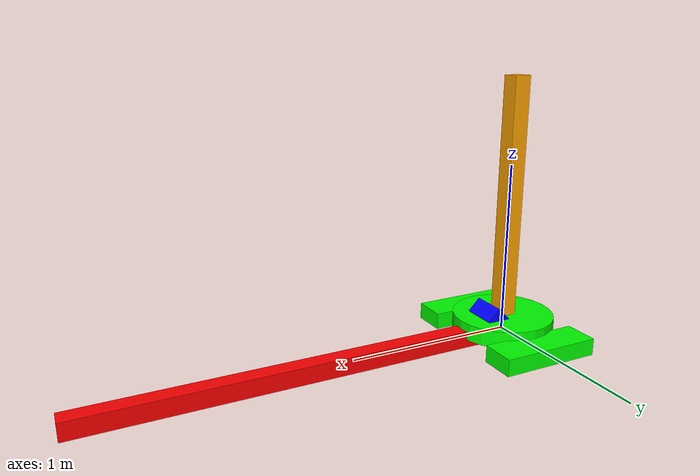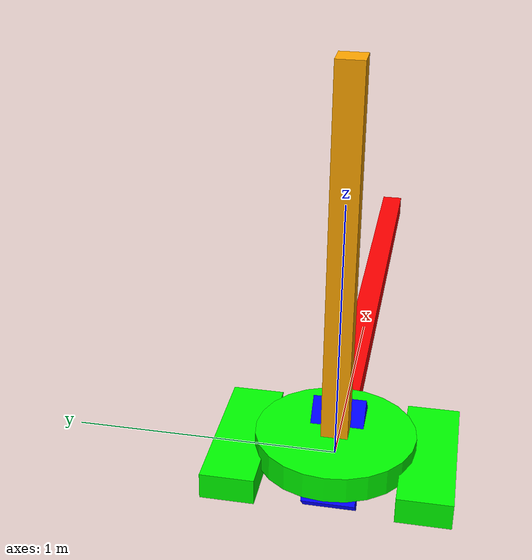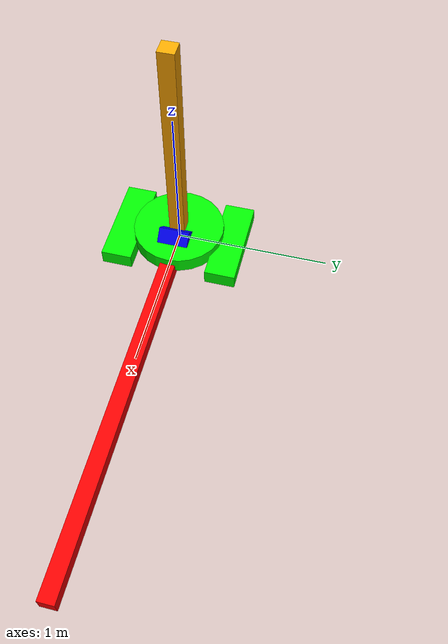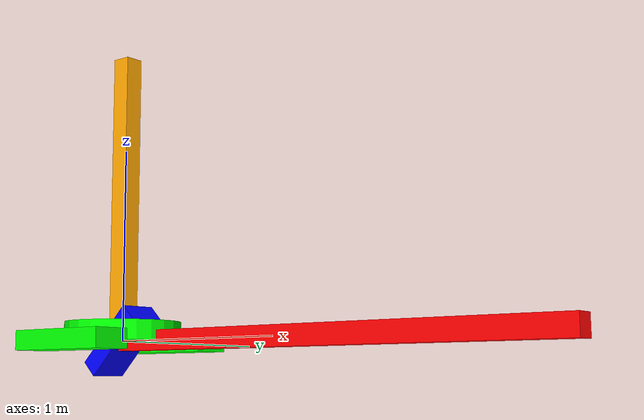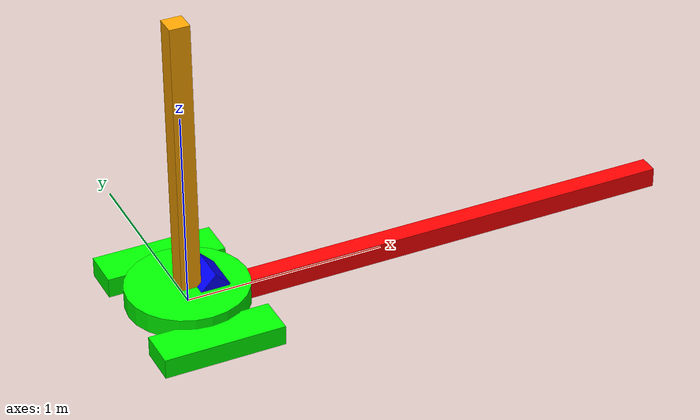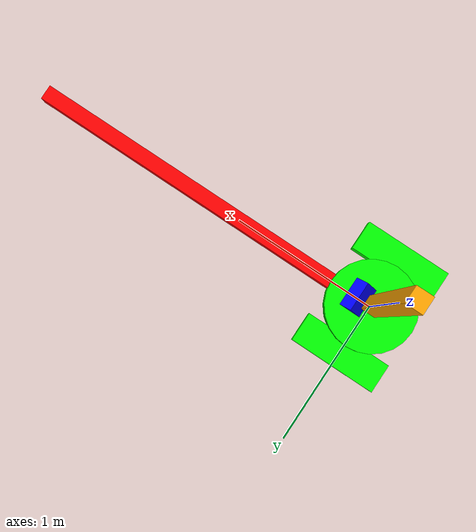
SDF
<?xml version="1.0" ?>
<sdf version="1.6">
  <model name="excavator_robot">
    <static>false</static>

    <!-- Base of the Excavator -->
    <link name="base_link">
      <pose>0 0 0.05 0 0 0</pose>
      <inertial>
        <mass>10.0</mass>
        <inertia>
          <ixx>0.1</ixx>
          <iyy>0.1</iyy>
          <izz>0.1</izz>
        </inertia>
      </inertial>
      <visual name="visual">
        <pose>0 0 0 0 0 0</pose>
        <geometry>
          <cylinder>
            <radius>0.3</radius>
            <length>0.1</length>
          </cylinder>
        </geometry>
        <material>
          <ambient>0 1 0 1</ambient>
          <diffuse>0 1 0 1</diffuse>
        </material>
      </visual>
      <collision name="collision">
        <pose>0 0 0 0 0 0</pose>
        <geometry>
          <cylinder>
            <radius>0.3</radius>
            <length>0.1</length>
          </cylinder>
        </geometry>
      </collision>
    </link>

    <!-- Left Track -->
    <link name="left_track">
      <pose>0 -0.35 0 0 0 0</pose>
      <inertial>
        <mass>2.0</mass>
        <inertia>
          <ixx>0.02</ixx>
          <iyy>0.02</iyy>
          <izz>0.02</izz>
        </inertia>
      </inertial>
      <visual name="visual">
        <pose>0 0 0 0 0 0</pose>
        <geometry>
          <box>
            <size>0.6 0.2 0.1</size>
          </box>
        </geometry>
        <material>
          <ambient>0 1 0 1</ambient>
          <diffuse>0 1 0 1</diffuse>
        </material>
      </visual>
      <collision name="collision">
        <pose>0 0 0 0 0 0</pose>
        <geometry>
          <box>
            <size>0.6 0.2 0.1</size>
          </box>
        </geometry>
      </collision>
    </link>

    <!-- Right Track -->
    <link name="right_track">
      <pose>0 0.35 0 0 0 0</pose>
      <inertial>
        <mass>2.0</mass>
        <inertia>
          <ixx>0.02</ixx>
          <iyy>0.02</iyy>
          <izz>0.02</izz>
        </inertia>
      </inertial>
      <visual name="visual">
        <pose>0 0 0 0 0 0</pose>
        <geometry>
          <box>
            <size>0.6 0.2 0.1</size>
          </box>
        </geometry>
        <material>
          <ambient>0 1 0 1</ambient>
          <diffuse>0 1 0 1</diffuse>
        </material>
      </visual>
      <collision name="collision">
        <pose>0 0 0 0 0 0</pose>
        <geometry>
          <box>
            <size>0.6 0.2 0.1</size>
          </box>
        </geometry>
      </collision>
    </link>

    <!-- Boom -->
    <link name="boom">
      <pose>0 0 0 0 0 0</pose>
      <inertial>
        <mass>3.0</mass>
        <pose>1.25 0 0 0 0 0</pose>
        <inertia>
          <ixx>0.05</ixx>
          <iyy>0.05</iyy>
          <izz>0.05</izz>
        </inertia>
      </inertial>
      <visual name="visual">
        <pose>1.25 0 0 0 0 0</pose>
        <geometry>
          <box>
            <size>2.5 0.1 0.1</size>
          </box>
        </geometry>
        <material>
          <ambient>1 0 0 1</ambient>
          <diffuse>1 0 0 1</diffuse>
        </material>
      </visual>
      <collision name="collision">
        <pose>1.25 0 0 0 0 0</pose>
        <geometry>
          <box>
            <size>2.5 0.1 0.1</size>
          </box>
        </geometry>
      </collision>
    </link>

    <!-- Stick -->
    <link name="stick">
      <pose>0 0 0 0 0 0</pose>
      <inertial>
        <mass>2.0</mass>
        <pose>0 0 0.75 0 0 0</pose>
        <inertia>
          <ixx>0.03</ixx>
          <iyy>0.03</iyy>
          <izz>0.03</izz>
        </inertia>
      </inertial>
      <visual name="visual">
        <pose>0 0 0.75 0 0 0</pose>
        <geometry>
          <box>
            <size>0.1 0.1 1.5</size>
          </box>
        </geometry>
        <material>
          <ambient>1 0.65 0 1</ambient>
          <diffuse>1 0.65 0 1</diffuse>
        </material>
      </visual>
      <collision name="collision">
        <pose>0 0 0.75 0 0 0</pose>
        <geometry>
          <box>
            <size>0.1 0.1 1.5</size>
          </box>
        </geometry>
      </collision>
    </link>

    <!-- Bucket -->
    <link name="bucket">
      <pose>0 0 0 0 0 0</pose>
      <inertial>
        <mass>1.0</mass>
        <pose>0 0 0 0 0 0</pose>
        <inertia>
          <ixx>0.005</ixx>
          <iyy>0.005</iyy>
          <izz>0.005</izz>
        </inertia>
      </inertial>
      <visual name="visual">
        <pose>0 0 0 0 -0.7854 0</pose> <!-- 45-degree tilt for scoop shape -->
        <geometry>
          <box>
            <size>0.4 0.2 0.1</size>
          </box>
        </geometry>
        <material>
          <ambient>0 0 1 1</ambient>
          <diffuse>0 0 1 1</diffuse>
        </material>
      </visual>
      <collision name="collision">
        <pose>0 0 0 0 -0.7854 0</pose>
        <geometry>
          <box>
            <size>0.4 0.2 0.1</size>
          </box>
        </geometry>
      </collision>
    </link>

    <!-- Joint: Base to Left Track (Fixed) -->
    <joint name="joint_base_to_left_track" type="fixed">
      <parent>base_link</parent>
      <child>left_track</child>
      <pose>0 -0.35 -0.05 0 0 0</pose>
    </joint>

    <!-- Joint: Base to Right Track (Fixed) -->
    <joint name="joint_base_to_right_track" type="fixed">
      <parent>base_link</parent>
      <child>right_track</child>
      <pose>0 0.35 -0.05 0 0 0</pose>
    </joint>

    <!-- Joint: Base to Boom -->
    <joint name="joint_base_to_boom" type="revolute">
      <parent>base_link</parent>
      <child>boom</child>
      <pose>0 0 0.1 0 0 0</pose>
      <axis>
        <xyz>0 1 0</xyz>
        <limit>
          <lower>-1.57</lower> <!-- -90 degrees -->
          <upper>1.57</upper>  <!-- +90 degrees -->
          <effort>20</effort>
          <velocity>1.0</velocity>
        </limit>
      </axis>
    </joint>

    <!-- Joint: Boom to Stick -->
    <joint name="joint_boom_to_stick" type="revolute">
      <parent>boom</parent>
      <child>stick</child>
      <pose>2.5 0 0 0 0 0</pose>
      <axis>
        <xyz>0 1 0</xyz>
        <limit>
          <lower>-2.0</lower>
          <upper>1.0</upper>
          <effort>20</effort>
          <velocity>1.0</velocity>
        </limit>
      </axis>
    </joint>

    <!-- Joint: Stick to Bucket -->
    <joint name="joint_stick_to_bucket" type="revolute">
      <parent>stick</parent>
      <child>bucket</child>
      <pose>0 0 1.5 0 0 0</pose>
      <axis>
        <xyz>0 1 0</xyz>
        <limit>
          <lower>-1.57</lower>
          <upper>1.57</upper>
          <effort>20</effort>
          <velocity>1.0</velocity>
        </limit>
      </axis>
    </joint>

  </model>
</sdf>
